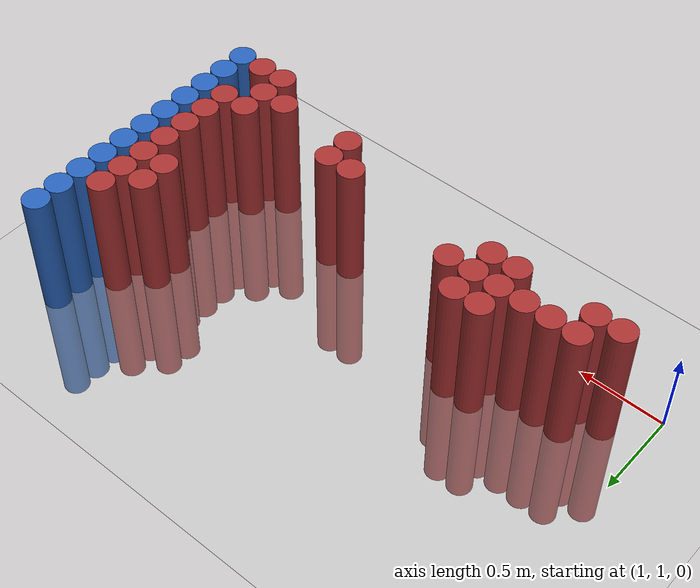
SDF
<sdf version="1.6">
 <world name="default">
  <model name="ground_plane">
   <static>1</static>
   <link name="link">
    <collision name="collision">
     <geometry><plane><normal>0 0 1</normal><size>100 100</size></plane></geometry>
     <surface><friction><ode><mu>100</mu><mu2>50</mu2></ode></friction></surface>
    </collision>
    <visual name="visual">
     <cast_shadows>0</cast_shadows>
     <geometry><plane><normal>0 0 1</normal><size>100 100</size></plane></geometry>
     <material>
      <script><uri>file://media/materials/scripts/gazebo.material</uri><name>Gazebo/Grey</name></script>
     </material>
    </visual>
   </link>
  </model>
  <model name="unit_cylinder_128">
   <static>1</static>
   <pose>3.925000 1.075000 0.000000 0.000000 0.000000 0.000000</pose>
   <link name="link">
    <inertial>
     <mass>1</mass>
     <inertia><ixx>0.145833</ixx><ixy>0</ixy><ixz>0</ixz><iyy>0.145833</iyy><iyz>0</iyz><izz>0.125</izz></inertia>
    </inertial>
    <collision name="collision">
     <geometry><cylinder><radius>0.075000</radius><length>1.5</length></cylinder></geometry>
    </collision>
    <visual name="visual">
     <geometry><cylinder><radius>0.075000</radius><length>1.5</length></cylinder></geometry>
     <material>
      <ambient>0.152000 0.379000 0.720000 1</ambient>
      <diffuse>0.152000 0.379000 0.720000 1</diffuse>
     </material>
     <material>
      <script><name>Gazebo/Grey</name><uri>file://media/materials/scripts/gazebo.material</uri></script>
     </material>
    </visual>
   </link>
  </model>
  <model name="unit_cylinder_130">
   <static>1</static>
   <pose>3.925000 1.225000 0.000000 0.000000 0.000000 0.000000</pose>
   <link name="link">
    <inertial>
     <mass>1</mass>
     <inertia><ixx>0.145833</ixx><ixy>0</ixy><ixz>0</ixz><iyy>0.145833</iyy><iyz>0</iyz><izz>0.125</izz></inertia>
    </inertial>
    <collision name="collision">
     <geometry><cylinder><radius>0.075000</radius><length>1.5</length></cylinder></geometry>
    </collision>
    <visual name="visual">
     <geometry><cylinder><radius>0.075000</radius><length>1.5</length></cylinder></geometry>
     <material>
      <ambient>0.152000 0.379000 0.720000 1</ambient>
      <diffuse>0.152000 0.379000 0.720000 1</diffuse>
     </material>
     <material>
      <script><name>Gazebo/Grey</name><uri>file://media/materials/scripts/gazebo.material</uri></script>
     </material>
    </visual>
   </link>
  </model>
  <model name="unit_cylinder_132">
   <static>1</static>
   <pose>3.925000 1.375000 0.000000 0.000000 0.000000 0.000000</pose>
   <link name="link">
    <inertial>
     <mass>1</mass>
     <inertia><ixx>0.145833</ixx><ixy>0</ixy><ixz>0</ixz><iyy>0.145833</iyy><iyz>0</iyz><izz>0.125</izz></inertia>
    </inertial>
    <collision name="collision">
     <geometry><cylinder><radius>0.075000</radius><length>1.5</length></cylinder></geometry>
    </collision>
    <visual name="visual">
     <geometry><cylinder><radius>0.075000</radius><length>1.5</length></cylinder></geometry>
     <material>
      <ambient>0.152000 0.379000 0.720000 1</ambient>
      <diffuse>0.152000 0.379000 0.720000 1</diffuse>
     </material>
     <material>
      <script><name>Gazebo/Grey</name><uri>file://media/materials/scripts/gazebo.material</uri></script>
     </material>
    </visual>
   </link>
  </model>
  <model name="unit_cylinder_134">
   <static>1</static>
   <pose>3.925000 1.525000 0.000000 0.000000 0.000000 0.000000</pose>
   <link name="link">
    <inertial>
     <mass>1</mass>
     <inertia><ixx>0.145833</ixx><ixy>0</ixy><ixz>0</ixz><iyy>0.145833</iyy><iyz>0</iyz><izz>0.125</izz></inertia>
    </inertial>
    <collision name="collision">
     <geometry><cylinder><radius>0.075000</radius><length>1.5</length></cylinder></geometry>
    </collision>
    <visual name="visual">
     <geometry><cylinder><radius>0.075000</radius><length>1.5</length></cylinder></geometry>
     <material>
      <ambient>0.152000 0.379000 0.720000 1</ambient>
      <diffuse>0.152000 0.379000 0.720000 1</diffuse>
     </material>
     <material>
      <script><name>Gazebo/Grey</name><uri>file://media/materials/scripts/gazebo.material</uri></script>
     </material>
    </visual>
   </link>
  </model>
  <model name="unit_cylinder_136">
   <static>1</static>
   <pose>3.925000 1.675000 0.000000 0.000000 0.000000 0.000000</pose>
   <link name="link">
    <inertial>
     <mass>1</mass>
     <inertia><ixx>0.145833</ixx><ixy>0</ixy><ixz>0</ixz><iyy>0.145833</iyy><iyz>0</iyz><izz>0.125</izz></inertia>
    </inertial>
    <collision name="collision">
     <geometry><cylinder><radius>0.075000</radius><length>1.5</length></cylinder></geometry>
    </collision>
    <visual name="visual">
     <geometry><cylinder><radius>0.075000</radius><length>1.5</length></cylinder></geometry>
     <material>
      <ambient>0.152000 0.379000 0.720000 1</ambient>
      <diffuse>0.152000 0.379000 0.720000 1</diffuse>
     </material>
     <material>
      <script><name>Gazebo/Grey</name><uri>file://media/materials/scripts/gazebo.material</uri></script>
     </material>
    </visual>
   </link>
  </model>
  <model name="unit_cylinder_138">
   <static>1</static>
   <pose>3.925000 1.825000 0.000000 0.000000 0.000000 0.000000</pose>
   <link name="link">
    <inertial>
     <mass>1</mass>
     <inertia><ixx>0.145833</ixx><ixy>0</ixy><ixz>0</ixz><iyy>0.145833</iyy><iyz>0</iyz><izz>0.125</izz></inertia>
    </inertial>
    <collision name="collision">
     <geometry><cylinder><radius>0.075000</radius><length>1.5</length></cylinder></geometry>
    </collision>
    <visual name="visual">
     <geometry><cylinder><radius>0.075000</radius><length>1.5</length></cylinder></geometry>
     <material>
      <ambient>0.152000 0.379000 0.720000 1</ambient>
      <diffuse>0.152000 0.379000 0.720000 1</diffuse>
     </material>
     <material>
      <script><name>Gazebo/Grey</name><uri>file://media/materials/scripts/gazebo.material</uri></script>
     </material>
    </visual>
   </link>
  </model>
  <model name="unit_cylinder_140">
   <static>1</static>
   <pose>3.925000 1.975000 0.000000 0.000000 0.000000 0.000000</pose>
   <link name="link">
    <inertial>
     <mass>1</mass>
     <inertia><ixx>0.145833</ixx><ixy>0</ixy><ixz>0</ixz><iyy>0.145833</iyy><iyz>0</iyz><izz>0.125</izz></inertia>
    </inertial>
    <collision name="collision">
     <geometry><cylinder><radius>0.075000</radius><length>1.5</length></cylinder></geometry>
    </collision>
    <visual name="visual">
     <geometry><cylinder><radius>0.075000</radius><length>1.5</length></cylinder></geometry>
     <material>
      <ambient>0.152000 0.379000 0.720000 1</ambient>
      <diffuse>0.152000 0.379000 0.720000 1</diffuse>
     </material>
     <material>
      <script><name>Gazebo/Grey</name><uri>file://media/materials/scripts/gazebo.material</uri></script>
     </material>
    </visual>
   </link>
  </model>
  <model name="unit_cylinder_142">
   <static>1</static>
   <pose>3.925000 2.125000 0.000000 0.000000 0.000000 0.000000</pose>
   <link name="link">
    <inertial>
     <mass>1</mass>
     <inertia><ixx>0.145833</ixx><ixy>0</ixy><ixz>0</ixz><iyy>0.145833</iyy><iyz>0</iyz><izz>0.125</izz></inertia>
    </inertial>
    <collision name="collision">
     <geometry><cylinder><radius>0.075000</radius><length>1.5</length></cylinder></geometry>
    </collision>
    <visual name="visual">
     <geometry><cylinder><radius>0.075000</radius><length>1.5</length></cylinder></geometry>
     <material>
      <ambient>0.152000 0.379000 0.720000 1</ambient>
      <diffuse>0.152000 0.379000 0.720000 1</diffuse>
     </material>
     <material>
      <script><name>Gazebo/Grey</name><uri>file://media/materials/scripts/gazebo.material</uri></script>
     </material>
    </visual>
   </link>
  </model>
  <model name="unit_cylinder_144">
   <static>1</static>
   <pose>3.925000 2.275000 0.000000 0.000000 0.000000 0.000000</pose>
   <link name="link">
    <inertial>
     <mass>1</mass>
     <inertia><ixx>0.145833</ixx><ixy>0</ixy><ixz>0</ixz><iyy>0.145833</iyy><iyz>0</iyz><izz>0.125</izz></inertia>
    </inertial>
    <collision name="collision">
     <geometry><cylinder><radius>0.075000</radius><length>1.5</length></cylinder></geometry>
    </collision>
    <visual name="visual">
     <geometry><cylinder><radius>0.075000</radius><length>1.5</length></cylinder></geometry>
     <material>
      <ambient>0.152000 0.379000 0.720000 1</ambient>
      <diffuse>0.152000 0.379000 0.720000 1</diffuse>
     </material>
     <material>
      <script><name>Gazebo/Grey</name><uri>file://media/materials/scripts/gazebo.material</uri></script>
     </material>
    </visual>
   </link>
  </model>
  <model name="unit_cylinder_146">
   <static>1</static>
   <pose>3.925000 2.425000 0.000000 0.000000 0.000000 0.000000</pose>
   <link name="link">
    <inertial>
     <mass>1</mass>
     <inertia><ixx>0.145833</ixx><ixy>0</ixy><ixz>0</ixz><iyy>0.145833</iyy><iyz>0</iyz><izz>0.125</izz></inertia>
    </inertial>
    <collision name="collision">
     <geometry><cylinder><radius>0.075000</radius><length>1.5</length></cylinder></geometry>
    </collision>
    <visual name="visual">
     <geometry><cylinder><radius>0.075000</radius><length>1.5</length></cylinder></geometry>
     <material>
      <ambient>0.152000 0.379000 0.720000 1</ambient>
      <diffuse>0.152000 0.379000 0.720000 1</diffuse>
     </material>
     <material>
      <script><name>Gazebo/Grey</name><uri>file://media/materials/scripts/gazebo.material</uri></script>
     </material>
    </visual>
   </link>
  </model>
  <model name="unit_cylinder_398">
   <static>1</static>
   <pose>1.225000 1.225000 0.000000 0.000000 0.000000 0.000000</pose>
   <link name="link">
    <inertial>
     <mass>1</mass>
     <inertia><ixx>0.145833</ixx><ixy>0</ixy><ixz>0</ixz><iyy>0.145833</iyy><iyz>0</iyz><izz>0.125</izz></inertia>
    </inertial>
    <collision name="collision">
     <geometry><cylinder><radius>0.075000</radius><length>1.5</length></cylinder></geometry>
    </collision>
    <visual name="visual">
     <geometry><cylinder><radius>0.075000</radius><length>1.5</length></cylinder></geometry>
     <material>
      <ambient>0.648000 0.192000 0.192000 1</ambient>
      <diffuse>0.648000 0.192000 0.192000 1</diffuse>
     </material>
     <material>
      <script><name>Gazebo/Grey</name><uri>file://media/materials/scripts/gazebo.material</uri></script>
     </material>
    </visual>
   </link>
  </model>
  <model name="unit_cylinder_401">
   <static>1</static>
   <pose>1.375000 1.225000 0.000000 0.000000 0.000000 0.000000</pose>
   <link name="link">
    <inertial>
     <mass>1</mass>
     <inertia><ixx>0.145833</ixx><ixy>0</ixy><ixz>0</ixz><iyy>0.145833</iyy><iyz>0</iyz><izz>0.125</izz></inertia>
    </inertial>
    <collision name="collision">
     <geometry><cylinder><radius>0.075000</radius><length>1.5</length></cylinder></geometry>
    </collision>
    <visual name="visual">
     <geometry><cylinder><radius>0.075000</radius><length>1.5</length></cylinder></geometry>
     <material>
      <ambient>0.648000 0.192000 0.192000 1</ambient>
      <diffuse>0.648000 0.192000 0.192000 1</diffuse>
     </material>
     <material>
      <script><name>Gazebo/Grey</name><uri>file://media/materials/scripts/gazebo.material</uri></script>
     </material>
    </visual>
   </link>
  </model>
  <model name="unit_cylinder_402">
   <static>1</static>
   <pose>1.375000 1.375000 0.000000 0.000000 0.000000 0.000000</pose>
   <link name="link">
    <inertial>
     <mass>1</mass>
     <inertia><ixx>0.145833</ixx><ixy>0</ixy><ixz>0</ixz><iyy>0.145833</iyy><iyz>0</iyz><izz>0.125</izz></inertia>
    </inertial>
    <collision name="collision">
     <geometry><cylinder><radius>0.075000</radius><length>1.5</length></cylinder></geometry>
    </collision>
    <visual name="visual">
     <geometry><cylinder><radius>0.075000</radius><length>1.5</length></cylinder></geometry>
     <material>
      <ambient>0.648000 0.192000 0.192000 1</ambient>
      <diffuse>0.648000 0.192000 0.192000 1</diffuse>
     </material>
     <material>
      <script><name>Gazebo/Grey</name><uri>file://media/materials/scripts/gazebo.material</uri></script>
     </material>
    </visual>
   </link>
  </model>
  <model name="unit_cylinder_407">
   <static>1</static>
   <pose>1.525000 1.375000 0.000000 0.000000 0.000000 0.000000</pose>
   <link name="link">
    <inertial>
     <mass>1</mass>
     <inertia><ixx>0.145833</ixx><ixy>0</ixy><ixz>0</ixz><iyy>0.145833</iyy><iyz>0</iyz><izz>0.125</izz></inertia>
    </inertial>
    <collision name="collision">
     <geometry><cylinder><radius>0.075000</radius><length>1.5</length></cylinder></geometry>
    </collision>
    <visual name="visual">
     <geometry><cylinder><radius>0.075000</radius><length>1.5</length></cylinder></geometry>
     <material>
      <ambient>0.648000 0.192000 0.192000 1</ambient>
      <diffuse>0.648000 0.192000 0.192000 1</diffuse>
     </material>
     <material>
      <script><name>Gazebo/Grey</name><uri>file://media/materials/scripts/gazebo.material</uri></script>
     </material>
    </visual>
   </link>
  </model>
  <model name="unit_cylinder_410">
   <static>1</static>
   <pose>1.675000 1.375000 0.000000 0.000000 0.000000 0.000000</pose>
   <link name="link">
    <inertial>
     <mass>1</mass>
     <inertia><ixx>0.145833</ixx><ixy>0</ixy><ixz>0</ixz><iyy>0.145833</iyy><iyz>0</iyz><izz>0.125</izz></inertia>
    </inertial>
    <collision name="collision">
     <geometry><cylinder><radius>0.075000</radius><length>1.5</length></cylinder></geometry>
    </collision>
    <visual name="visual">
     <geometry><cylinder><radius>0.075000</radius><length>1.5</length></cylinder></geometry>
     <material>
      <ambient>0.648000 0.192000 0.192000 1</ambient>
      <diffuse>0.648000 0.192000 0.192000 1</diffuse>
     </material>
     <material>
      <script><name>Gazebo/Grey</name><uri>file://media/materials/scripts/gazebo.material</uri></script>
     </material>
    </visual>
   </link>
  </model>
  <model name="unit_cylinder_413">
   <static>1</static>
   <pose>1.825000 1.225000 0.000000 0.000000 0.000000 0.000000</pose>
   <link name="link">
    <inertial>
     <mass>1</mass>
     <inertia><ixx>0.145833</ixx><ixy>0</ixy><ixz>0</ixz><iyy>0.145833</iyy><iyz>0</iyz><izz>0.125</izz></inertia>
    </inertial>
    <collision name="collision">
     <geometry><cylinder><radius>0.075000</radius><length>1.5</length></cylinder></geometry>
    </collision>
    <visual name="visual">
     <geometry><cylinder><radius>0.075000</radius><length>1.5</length></cylinder></geometry>
     <material>
      <ambient>0.648000 0.192000 0.192000 1</ambient>
      <diffuse>0.648000 0.192000 0.192000 1</diffuse>
     </material>
     <material>
      <script><name>Gazebo/Grey</name><uri>file://media/materials/scripts/gazebo.material</uri></script>
     </material>
    </visual>
   </link>
  </model>
  <model name="unit_cylinder_414">
   <static>1</static>
   <pose>1.825000 1.375000 0.000000 0.000000 0.000000 0.000000</pose>
   <link name="link">
    <inertial>
     <mass>1</mass>
     <inertia><ixx>0.145833</ixx><ixy>0</ixy><ixz>0</ixz><iyy>0.145833</iyy><iyz>0</iyz><izz>0.125</izz></inertia>
    </inertial>
    <collision name="collision">
     <geometry><cylinder><radius>0.075000</radius><length>1.5</length></cylinder></geometry>
    </collision>
    <visual name="visual">
     <geometry><cylinder><radius>0.075000</radius><length>1.5</length></cylinder></geometry>
     <material>
      <ambient>0.648000 0.192000 0.192000 1</ambient>
      <diffuse>0.648000 0.192000 0.192000 1</diffuse>
     </material>
     <material>
      <script><name>Gazebo/Grey</name><uri>file://media/materials/scripts/gazebo.material</uri></script>
     </material>
    </visual>
   </link>
  </model>
  <model name="unit_cylinder_415">
   <static>1</static>
   <pose>1.825000 1.525000 0.000000 0.000000 0.000000 0.000000</pose>
   <link name="link">
    <inertial>
     <mass>1</mass>
     <inertia><ixx>0.145833</ixx><ixy>0</ixy><ixz>0</ixz><iyy>0.145833</iyy><iyz>0</iyz><izz>0.125</izz></inertia>
    </inertial>
    <collision name="collision">
     <geometry><cylinder><radius>0.075000</radius><length>1.5</length></cylinder></geometry>
    </collision>
    <visual name="visual">
     <geometry><cylinder><radius>0.075000</radius><length>1.5</length></cylinder></geometry>
     <material>
      <ambient>0.648000 0.192000 0.192000 1</ambient>
      <diffuse>0.648000 0.192000 0.192000 1</diffuse>
     </material>
     <material>
      <script><name>Gazebo/Grey</name><uri>file://media/materials/scripts/gazebo.material</uri></script>
     </material>
    </visual>
   </link>
  </model>
  <model name="unit_cylinder_418">
   <static>1</static>
   <pose>1.975000 1.225000 0.000000 0.000000 0.000000 0.000000</pose>
   <link name="link">
    <inertial>
     <mass>1</mass>
     <inertia><ixx>0.145833</ixx><ixy>0</ixy><ixz>0</ixz><iyy>0.145833</iyy><iyz>0</iyz><izz>0.125</izz></inertia>
    </inertial>
    <collision name="collision">
     <geometry><cylinder><radius>0.075000</radius><length>1.5</length></cylinder></geometry>
    </collision>
    <visual name="visual">
     <geometry><cylinder><radius>0.075000</radius><length>1.5</length></cylinder></geometry>
     <material>
      <ambient>0.648000 0.192000 0.192000 1</ambient>
      <diffuse>0.648000 0.192000 0.192000 1</diffuse>
     </material>
     <material>
      <script><name>Gazebo/Grey</name><uri>file://media/materials/scripts/gazebo.material</uri></script>
     </material>
    </visual>
   </link>
  </model>
  <model name="unit_cylinder_419">
   <static>1</static>
   <pose>1.975000 1.375000 0.000000 0.000000 0.000000 0.000000</pose>
   <link name="link">
    <inertial>
     <mass>1</mass>
     <inertia><ixx>0.145833</ixx><ixy>0</ixy><ixz>0</ixz><iyy>0.145833</iyy><iyz>0</iyz><izz>0.125</izz></inertia>
    </inertial>
    <collision name="collision">
     <geometry><cylinder><radius>0.075000</radius><length>1.5</length></cylinder></geometry>
    </collision>
    <visual name="visual">
     <geometry><cylinder><radius>0.075000</radius><length>1.5</length></cylinder></geometry>
     <material>
      <ambient>0.648000 0.192000 0.192000 1</ambient>
      <diffuse>0.648000 0.192000 0.192000 1</diffuse>
     </material>
     <material>
      <script><name>Gazebo/Grey</name><uri>file://media/materials/scripts/gazebo.material</uri></script>
     </material>
    </visual>
   </link>
  </model>
  <model name="unit_cylinder_420">
   <static>1</static>
   <pose>1.975000 1.525000 0.000000 0.000000 0.000000 0.000000</pose>
   <link name="link">
    <inertial>
     <mass>1</mass>
     <inertia><ixx>0.145833</ixx><ixy>0</ixy><ixz>0</ixz><iyy>0.145833</iyy><iyz>0</iyz><izz>0.125</izz></inertia>
    </inertial>
    <collision name="collision">
     <geometry><cylinder><radius>0.075000</radius><length>1.5</length></cylinder></geometry>
    </collision>
    <visual name="visual">
     <geometry><cylinder><radius>0.075000</radius><length>1.5</length></cylinder></geometry>
     <material>
      <ambient>0.648000 0.192000 0.192000 1</ambient>
      <diffuse>0.648000 0.192000 0.192000 1</diffuse>
     </material>
     <material>
      <script><name>Gazebo/Grey</name><uri>file://media/materials/scripts/gazebo.material</uri></script>
     </material>
    </visual>
   </link>
  </model>
  <model name="unit_cylinder_423">
   <static>1</static>
   <pose>2.125000 1.375000 0.000000 0.000000 0.000000 0.000000</pose>
   <link name="link">
    <inertial>
     <mass>1</mass>
     <inertia><ixx>0.145833</ixx><ixy>0</ixy><ixz>0</ixz><iyy>0.145833</iyy><iyz>0</iyz><izz>0.125</izz></inertia>
    </inertial>
    <collision name="collision">
     <geometry><cylinder><radius>0.075000</radius><length>1.5</length></cylinder></geometry>
    </collision>
    <visual name="visual">
     <geometry><cylinder><radius>0.075000</radius><length>1.5</length></cylinder></geometry>
     <material>
      <ambient>0.648000 0.192000 0.192000 1</ambient>
      <diffuse>0.648000 0.192000 0.192000 1</diffuse>
     </material>
     <material>
      <script><name>Gazebo/Grey</name><uri>file://media/materials/scripts/gazebo.material</uri></script>
     </material>
    </visual>
   </link>
  </model>
  <model name="unit_cylinder_435">
   <static>1</static>
   <pose>2.875000 1.225000 0.000000 0.000000 0.000000 0.000000</pose>
   <link name="link">
    <inertial>
     <mass>1</mass>
     <inertia><ixx>0.145833</ixx><ixy>0</ixy><ixz>0</ixz><iyy>0.145833</iyy><iyz>0</iyz><izz>0.125</izz></inertia>
    </inertial>
    <collision name="collision">
     <geometry><cylinder><radius>0.075000</radius><length>1.5</length></cylinder></geometry>
    </collision>
    <visual name="visual">
     <geometry><cylinder><radius>0.075000</radius><length>1.5</length></cylinder></geometry>
     <material>
      <ambient>0.648000 0.192000 0.192000 1</ambient>
      <diffuse>0.648000 0.192000 0.192000 1</diffuse>
     </material>
     <material>
      <script><name>Gazebo/Grey</name><uri>file://media/materials/scripts/gazebo.material</uri></script>
     </material>
    </visual>
   </link>
  </model>
  <model name="unit_cylinder_443">
   <static>1</static>
   <pose>3.025000 1.075000 0.000000 0.000000 0.000000 0.000000</pose>
   <link name="link">
    <inertial>
     <mass>1</mass>
     <inertia><ixx>0.145833</ixx><ixy>0</ixy><ixz>0</ixz><iyy>0.145833</iyy><iyz>0</iyz><izz>0.125</izz></inertia>
    </inertial>
    <collision name="collision">
     <geometry><cylinder><radius>0.075000</radius><length>1.5</length></cylinder></geometry>
    </collision>
    <visual name="visual">
     <geometry><cylinder><radius>0.075000</radius><length>1.5</length></cylinder></geometry>
     <material>
      <ambient>0.648000 0.192000 0.192000 1</ambient>
      <diffuse>0.648000 0.192000 0.192000 1</diffuse>
     </material>
     <material>
      <script><name>Gazebo/Grey</name><uri>file://media/materials/scripts/gazebo.material</uri></script>
     </material>
    </visual>
   </link>
  </model>
  <model name="unit_cylinder_444">
   <static>1</static>
   <pose>3.025000 1.225000 0.000000 0.000000 0.000000 0.000000</pose>
   <link name="link">
    <inertial>
     <mass>1</mass>
     <inertia><ixx>0.145833</ixx><ixy>0</ixy><ixz>0</ixz><iyy>0.145833</iyy><iyz>0</iyz><izz>0.125</izz></inertia>
    </inertial>
    <collision name="collision">
     <geometry><cylinder><radius>0.075000</radius><length>1.5</length></cylinder></geometry>
    </collision>
    <visual name="visual">
     <geometry><cylinder><radius>0.075000</radius><length>1.5</length></cylinder></geometry>
     <material>
      <ambient>0.648000 0.192000 0.192000 1</ambient>
      <diffuse>0.648000 0.192000 0.192000 1</diffuse>
     </material>
     <material>
      <script><name>Gazebo/Grey</name><uri>file://media/materials/scripts/gazebo.material</uri></script>
     </material>
    </visual>
   </link>
  </model>
  <model name="unit_cylinder_457">
   <static>1</static>
   <pose>3.475000 1.075000 0.000000 0.000000 0.000000 0.000000</pose>
   <link name="link">
    <inertial>
     <mass>1</mass>
     <inertia><ixx>0.145833</ixx><ixy>0</ixy><ixz>0</ixz><iyy>0.145833</iyy><iyz>0</iyz><izz>0.125</izz></inertia>
    </inertial>
    <collision name="collision">
     <geometry><cylinder><radius>0.075000</radius><length>1.5</length></cylinder></geometry>
    </collision>
    <visual name="visual">
     <geometry><cylinder><radius>0.075000</radius><length>1.5</length></cylinder></geometry>
     <material>
      <ambient>0.648000 0.192000 0.192000 1</ambient>
      <diffuse>0.648000 0.192000 0.192000 1</diffuse>
     </material>
     <material>
      <script><name>Gazebo/Grey</name><uri>file://media/materials/scripts/gazebo.material</uri></script>
     </material>
    </visual>
   </link>
  </model>
  <model name="unit_cylinder_458">
   <static>1</static>
   <pose>3.625000 0.925000 0.000000 0.000000 0.000000 0.000000</pose>
   <link name="link">
    <inertial>
     <mass>1</mass>
     <inertia><ixx>0.145833</ixx><ixy>0</ixy><ixz>0</ixz><iyy>0.145833</iyy><iyz>0</iyz><izz>0.125</izz></inertia>
    </inertial>
    <collision name="collision">
     <geometry><cylinder><radius>0.075000</radius><length>1.5</length></cylinder></geometry>
    </collision>
    <visual name="visual">
     <geometry><cylinder><radius>0.075000</radius><length>1.5</length></cylinder></geometry>
     <material>
      <ambient>0.648000 0.192000 0.192000 1</ambient>
      <diffuse>0.648000 0.192000 0.192000 1</diffuse>
     </material>
     <material>
      <script><name>Gazebo/Grey</name><uri>file://media/materials/scripts/gazebo.material</uri></script>
     </material>
    </visual>
   </link>
  </model>
  <model name="unit_cylinder_459">
   <static>1</static>
   <pose>3.625000 1.075000 0.000000 0.000000 0.000000 0.000000</pose>
   <link name="link">
    <inertial>
     <mass>1</mass>
     <inertia><ixx>0.145833</ixx><ixy>0</ixy><ixz>0</ixz><iyy>0.145833</iyy><iyz>0</iyz><izz>0.125</izz></inertia>
    </inertial>
    <collision name="collision">
     <geometry><cylinder><radius>0.075000</radius><length>1.5</length></cylinder></geometry>
    </collision>
    <visual name="visual">
     <geometry><cylinder><radius>0.075000</radius><length>1.5</length></cylinder></geometry>
     <material>
      <ambient>0.648000 0.192000 0.192000 1</ambient>
      <diffuse>0.648000 0.192000 0.192000 1</diffuse>
     </material>
     <material>
      <script><name>Gazebo/Grey</name><uri>file://media/materials/scripts/gazebo.material</uri></script>
     </material>
    </visual>
   </link>
  </model>
  <model name="unit_cylinder_460">
   <static>1</static>
   <pose>3.625000 1.225000 0.000000 0.000000 0.000000 0.000000</pose>
   <link name="link">
    <inertial>
     <mass>1</mass>
     <inertia><ixx>0.145833</ixx><ixy>0</ixy><ixz>0</ixz><iyy>0.145833</iyy><iyz>0</iyz><izz>0.125</izz></inertia>
    </inertial>
    <collision name="collision">
     <geometry><cylinder><radius>0.075000</radius><length>1.5</length></cylinder></geometry>
    </collision>
    <visual name="visual">
     <geometry><cylinder><radius>0.075000</radius><length>1.5</length></cylinder></geometry>
     <material>
      <ambient>0.648000 0.192000 0.192000 1</ambient>
      <diffuse>0.648000 0.192000 0.192000 1</diffuse>
     </material>
     <material>
      <script><name>Gazebo/Grey</name><uri>file://media/materials/scripts/gazebo.material</uri></script>
     </material>
    </visual>
   </link>
  </model>
  <model name="unit_cylinder_461">
   <static>1</static>
   <pose>3.625000 1.825000 0.000000 0.000000 0.000000 0.000000</pose>
   <link name="link">
    <inertial>
     <mass>1</mass>
     <inertia><ixx>0.145833</ixx><ixy>0</ixy><ixz>0</ixz><iyy>0.145833</iyy><iyz>0</iyz><izz>0.125</izz></inertia>
    </inertial>
    <collision name="collision">
     <geometry><cylinder><radius>0.075000</radius><length>1.5</length></cylinder></geometry>
    </collision>
    <visual name="visual">
     <geometry><cylinder><radius>0.075000</radius><length>1.5</length></cylinder></geometry>
     <material>
      <ambient>0.648000 0.192000 0.192000 1</ambient>
      <diffuse>0.648000 0.192000 0.192000 1</diffuse>
     </material>
     <material>
      <script><name>Gazebo/Grey</name><uri>file://media/materials/scripts/gazebo.material</uri></script>
     </material>
    </visual>
   </link>
  </model>
  <model name="unit_cylinder_462">
   <static>1</static>
   <pose>3.625000 1.975000 0.000000 0.000000 0.000000 0.000000</pose>
   <link name="link">
    <inertial>
     <mass>1</mass>
     <inertia><ixx>0.145833</ixx><ixy>0</ixy><ixz>0</ixz><iyy>0.145833</iyy><iyz>0</iyz><izz>0.125</izz></inertia>
    </inertial>
    <collision name="collision">
     <geometry><cylinder><radius>0.075000</radius><length>1.5</length></cylinder></geometry>
    </collision>
    <visual name="visual">
     <geometry><cylinder><radius>0.075000</radius><length>1.5</length></cylinder></geometry>
     <material>
      <ambient>0.648000 0.192000 0.192000 1</ambient>
      <diffuse>0.648000 0.192000 0.192000 1</diffuse>
     </material>
     <material>
      <script><name>Gazebo/Grey</name><uri>file://media/materials/scripts/gazebo.material</uri></script>
     </material>
    </visual>
   </link>
  </model>
  <model name="unit_cylinder_477">
   <static>1</static>
   <pose>3.775000 0.925000 0.000000 0.000000 0.000000 0.000000</pose>
   <link name="link">
    <inertial>
     <mass>1</mass>
     <inertia><ixx>0.145833</ixx><ixy>0</ixy><ixz>0</ixz><iyy>0.145833</iyy><iyz>0</iyz><izz>0.125</izz></inertia>
    </inertial>
    <collision name="collision">
     <geometry><cylinder><radius>0.075000</radius><length>1.5</length></cylinder></geometry>
    </collision>
    <visual name="visual">
     <geometry><cylinder><radius>0.075000</radius><length>1.5</length></cylinder></geometry>
     <material>
      <ambient>0.648000 0.192000 0.192000 1</ambient>
      <diffuse>0.648000 0.192000 0.192000 1</diffuse>
     </material>
     <material>
      <script><name>Gazebo/Grey</name><uri>file://media/materials/scripts/gazebo.material</uri></script>
     </material>
    </visual>
   </link>
  </model>
  <model name="unit_cylinder_478">
   <static>1</static>
   <pose>3.775000 1.225000 0.000000 0.000000 0.000000 0.000000</pose>
   <link name="link">
    <inertial>
     <mass>1</mass>
     <inertia><ixx>0.145833</ixx><ixy>0</ixy><ixz>0</ixz><iyy>0.145833</iyy><iyz>0</iyz><izz>0.125</izz></inertia>
    </inertial>
    <collision name="collision">
     <geometry><cylinder><radius>0.075000</radius><length>1.5</length></cylinder></geometry>
    </collision>
    <visual name="visual">
     <geometry><cylinder><radius>0.075000</radius><length>1.5</length></cylinder></geometry>
     <material>
      <ambient>0.648000 0.192000 0.192000 1</ambient>
      <diffuse>0.648000 0.192000 0.192000 1</diffuse>
     </material>
     <material>
      <script><name>Gazebo/Grey</name><uri>file://media/materials/scripts/gazebo.material</uri></script>
     </material>
    </visual>
   </link>
  </model>
  <model name="unit_cylinder_479">
   <static>1</static>
   <pose>3.775000 1.375000 0.000000 0.000000 0.000000 0.000000</pose>
   <link name="link">
    <inertial>
     <mass>1</mass>
     <inertia><ixx>0.145833</ixx><ixy>0</ixy><ixz>0</ixz><iyy>0.145833</iyy><iyz>0</iyz><izz>0.125</izz></inertia>
    </inertial>
    <collision name="collision">
     <geometry><cylinder><radius>0.075000</radius><length>1.5</length></cylinder></geometry>
    </collision>
    <visual name="visual">
     <geometry><cylinder><radius>0.075000</radius><length>1.5</length></cylinder></geometry>
     <material>
      <ambient>0.648000 0.192000 0.192000 1</ambient>
      <diffuse>0.648000 0.192000 0.192000 1</diffuse>
     </material>
     <material>
      <script><name>Gazebo/Grey</name><uri>file://media/materials/scripts/gazebo.material</uri></script>
     </material>
    </visual>
   </link>
  </model>
  <model name="unit_cylinder_480">
   <static>1</static>
   <pose>3.775000 1.525000 0.000000 0.000000 0.000000 0.000000</pose>
   <link name="link">
    <inertial>
     <mass>1</mass>
     <inertia><ixx>0.145833</ixx><ixy>0</ixy><ixz>0</ixz><iyy>0.145833</iyy><iyz>0</iyz><izz>0.125</izz></inertia>
    </inertial>
    <collision name="collision">
     <geometry><cylinder><radius>0.075000</radius><length>1.5</length></cylinder></geometry>
    </collision>
    <visual name="visual">
     <geometry><cylinder><radius>0.075000</radius><length>1.5</length></cylinder></geometry>
     <material>
      <ambient>0.648000 0.192000 0.192000 1</ambient>
      <diffuse>0.648000 0.192000 0.192000 1</diffuse>
     </material>
     <material>
      <script><name>Gazebo/Grey</name><uri>file://media/materials/scripts/gazebo.material</uri></script>
     </material>
    </visual>
   </link>
  </model>
  <model name="unit_cylinder_481">
   <static>1</static>
   <pose>3.775000 1.675000 0.000000 0.000000 0.000000 0.000000</pose>
   <link name="link">
    <inertial>
     <mass>1</mass>
     <inertia><ixx>0.145833</ixx><ixy>0</ixy><ixz>0</ixz><iyy>0.145833</iyy><iyz>0</iyz><izz>0.125</izz></inertia>
    </inertial>
    <collision name="collision">
     <geometry><cylinder><radius>0.075000</radius><length>1.5</length></cylinder></geometry>
    </collision>
    <visual name="visual">
     <geometry><cylinder><radius>0.075000</radius><length>1.5</length></cylinder></geometry>
     <material>
      <ambient>0.648000 0.192000 0.192000 1</ambient>
      <diffuse>0.648000 0.192000 0.192000 1</diffuse>
     </material>
     <material>
      <script><name>Gazebo/Grey</name><uri>file://media/materials/scripts/gazebo.material</uri></script>
     </material>
    </visual>
   </link>
  </model>
  <model name="unit_cylinder_482">
   <static>1</static>
   <pose>3.775000 1.825000 0.000000 0.000000 0.000000 0.000000</pose>
   <link name="link">
    <inertial>
     <mass>1</mass>
     <inertia><ixx>0.145833</ixx><ixy>0</ixy><ixz>0</ixz><iyy>0.145833</iyy><iyz>0</iyz><izz>0.125</izz></inertia>
    </inertial>
    <collision name="collision">
     <geometry><cylinder><radius>0.075000</radius><length>1.5</length></cylinder></geometry>
    </collision>
    <visual name="visual">
     <geometry><cylinder><radius>0.075000</radius><length>1.5</length></cylinder></geometry>
     <material>
      <ambient>0.648000 0.192000 0.192000 1</ambient>
      <diffuse>0.648000 0.192000 0.192000 1</diffuse>
     </material>
     <material>
      <script><name>Gazebo/Grey</name><uri>file://media/materials/scripts/gazebo.material</uri></script>
     </material>
    </visual>
   </link>
  </model>
  <model name="unit_cylinder_483">
   <static>1</static>
   <pose>3.775000 1.975000 0.000000 0.000000 0.000000 0.000000</pose>
   <link name="link">
    <inertial>
     <mass>1</mass>
     <inertia><ixx>0.145833</ixx><ixy>0</ixy><ixz>0</ixz><iyy>0.145833</iyy><iyz>0</iyz><izz>0.125</izz></inertia>
    </inertial>
    <collision name="collision">
     <geometry><cylinder><radius>0.075000</radius><length>1.5</length></cylinder></geometry>
    </collision>
    <visual name="visual">
     <geometry><cylinder><radius>0.075000</radius><length>1.5</length></cylinder></geometry>
     <material>
      <ambient>0.648000 0.192000 0.192000 1</ambient>
      <diffuse>0.648000 0.192000 0.192000 1</diffuse>
     </material>
     <material>
      <script><name>Gazebo/Grey</name><uri>file://media/materials/scripts/gazebo.material</uri></script>
     </material>
    </visual>
   </link>
  </model>
  <model name="unit_cylinder_484">
   <static>1</static>
   <pose>3.775000 2.125000 0.000000 0.000000 0.000000 0.000000</pose>
   <link name="link">
    <inertial>
     <mass>1</mass>
     <inertia><ixx>0.145833</ixx><ixy>0</ixy><ixz>0</ixz><iyy>0.145833</iyy><iyz>0</iyz><izz>0.125</izz></inertia>
    </inertial>
    <collision name="collision">
     <geometry><cylinder><radius>0.075000</radius><length>1.5</length></cylinder></geometry>
    </collision>
    <visual name="visual">
     <geometry><cylinder><radius>0.075000</radius><length>1.5</length></cylinder></geometry>
     <material>
      <ambient>0.648000 0.192000 0.192000 1</ambient>
      <diffuse>0.648000 0.192000 0.192000 1</diffuse>
     </material>
     <material>
      <script><name>Gazebo/Grey</name><uri>file://media/materials/scripts/gazebo.material</uri></script>
     </material>
    </visual>
   </link>
  </model>
  <model name="unit_cylinder_517">
   <static>1</static>
   <pose>3.925000 0.925000 0.000000 0.000000 0.000000 0.000000</pose>
   <link name="link">
    <inertial>
     <mass>1</mass>
     <inertia><ixx>0.145833</ixx><ixy>0</ixy><ixz>0</ixz><iyy>0.145833</iyy><iyz>0</iyz><izz>0.125</izz></inertia>
    </inertial>
    <collision name="collision">
     <geometry><cylinder><radius>0.075000</radius><length>1.5</length></cylinder></geometry>
    </collision>
    <visual name="visual">
     <geometry><cylinder><radius>0.075000</radius><length>1.5</length></cylinder></geometry>
     <material>
      <ambient>0.152000 0.379000 0.720000 1</ambient>
      <diffuse>0.152000 0.379000 0.720000 1</diffuse>
     </material>
     <material>
      <script><name>Gazebo/Grey</name><uri>file://media/materials/scripts/gazebo.material</uri></script>
     </material>
    </visual>
   </link>
  </model>
  <model name="unit_cylinder_518">
   <static>1</static>
   <pose>3.925000 1.075000 0.000000 0.000000 0.000000 0.000000</pose>
   <link name="link">
    <inertial>
     <mass>1</mass>
     <inertia><ixx>0.145833</ixx><ixy>0</ixy><ixz>0</ixz><iyy>0.145833</iyy><iyz>0</iyz><izz>0.125</izz></inertia>
    </inertial>
    <collision name="collision">
     <geometry><cylinder><radius>0.075000</radius><length>1.5</length></cylinder></geometry>
    </collision>
    <visual name="visual">
     <geometry><cylinder><radius>0.075000</radius><length>1.5</length></cylinder></geometry>
     <material>
      <ambient>0.152000 0.379000 0.720000 1</ambient>
      <diffuse>0.152000 0.379000 0.720000 1</diffuse>
     </material>
     <material>
      <script><name>Gazebo/Grey</name><uri>file://media/materials/scripts/gazebo.material</uri></script>
     </material>
    </visual>
   </link>
  </model>
  <model name="unit_cylinder_519">
   <static>1</static>
   <pose>3.925000 1.225000 0.000000 0.000000 0.000000 0.000000</pose>
   <link name="link">
    <inertial>
     <mass>1</mass>
     <inertia><ixx>0.145833</ixx><ixy>0</ixy><ixz>0</ixz><iyy>0.145833</iyy><iyz>0</iyz><izz>0.125</izz></inertia>
    </inertial>
    <collision name="collision">
     <geometry><cylinder><radius>0.075000</radius><length>1.5</length></cylinder></geometry>
    </collision>
    <visual name="visual">
     <geometry><cylinder><radius>0.075000</radius><length>1.5</length></cylinder></geometry>
     <material>
      <ambient>0.152000 0.379000 0.720000 1</ambient>
      <diffuse>0.152000 0.379000 0.720000 1</diffuse>
     </material>
     <material>
      <script><name>Gazebo/Grey</name><uri>file://media/materials/scripts/gazebo.material</uri></script>
     </material>
    </visual>
   </link>
  </model>
  <model name="unit_cylinder_520">
   <static>1</static>
   <pose>3.925000 1.375000 0.000000 0.000000 0.000000 0.000000</pose>
   <link name="link">
    <inertial>
     <mass>1</mass>
     <inertia><ixx>0.145833</ixx><ixy>0</ixy><ixz>0</ixz><iyy>0.145833</iyy><iyz>0</iyz><izz>0.125</izz></inertia>
    </inertial>
    <collision name="collision">
     <geometry><cylinder><radius>0.075000</radius><length>1.5</length></cylinder></geometry>
    </collision>
    <visual name="visual">
     <geometry><cylinder><radius>0.075000</radius><length>1.5</length></cylinder></geometry>
     <material>
      <ambient>0.152000 0.379000 0.720000 1</ambient>
      <diffuse>0.152000 0.379000 0.720000 1</diffuse>
     </material>
     <material>
      <script><name>Gazebo/Grey</name><uri>file://media/materials/scripts/gazebo.material</uri></script>
     </material>
    </visual>
   </link>
  </model>
  <model name="unit_cylinder_521">
   <static>1</static>
   <pose>3.925000 1.525000 0.000000 0.000000 0.000000 0.000000</pose>
   <link name="link">
    <inertial>
     <mass>1</mass>
     <inertia><ixx>0.145833</ixx><ixy>0</ixy><ixz>0</ixz><iyy>0.145833</iyy><iyz>0</iyz><izz>0.125</izz></inertia>
    </inertial>
    <collision name="collision">
     <geometry><cylinder><radius>0.075000</radius><length>1.5</length></cylinder></geometry>
    </collision>
    <visual name="visual">
     <geometry><cylinder><radius>0.075000</radius><length>1.5</length></cylinder></geometry>
     <material>
      <ambient>0.152000 0.379000 0.720000 1</ambient>
      <diffuse>0.152000 0.379000 0.720000 1</diffuse>
     </material>
     <material>
      <script><name>Gazebo/Grey</name><uri>file://media/materials/scripts/gazebo.material</uri></script>
     </material>
    </visual>
   </link>
  </model>
  <model name="unit_cylinder_522">
   <static>1</static>
   <pose>3.925000 1.675000 0.000000 0.000000 0.000000 0.000000</pose>
   <link name="link">
    <inertial>
     <mass>1</mass>
     <inertia><ixx>0.145833</ixx><ixy>0</ixy><ixz>0</ixz><iyy>0.145833</iyy><iyz>0</iyz><izz>0.125</izz></inertia>
    </inertial>
    <collision name="collision">
     <geometry><cylinder><radius>0.075000</radius><length>1.5</length></cylinder></geometry>
    </collision>
    <visual name="visual">
     <geometry><cylinder><radius>0.075000</radius><length>1.5</length></cylinder></geometry>
     <material>
      <ambient>0.152000 0.379000 0.720000 1</ambient>
      <diffuse>0.152000 0.379000 0.720000 1</diffuse>
     </material>
     <material>
      <script><name>Gazebo/Grey</name><uri>file://media/materials/scripts/gazebo.material</uri></script>
     </material>
    </visual>
   </link>
  </model>
  <model name="unit_cylinder_523">
   <static>1</static>
   <pose>3.925000 1.825000 0.000000 0.000000 0.000000 0.000000</pose>
   <link name="link">
    <inertial>
     <mass>1</mass>
     <inertia><ixx>0.145833</ixx><ixy>0</ixy><ixz>0</ixz><iyy>0.145833</iyy><iyz>0</iyz><izz>0.125</izz></inertia>
    </inertial>
    <collision name="collision">
     <geometry><cylinder><radius>0.075000</radius><length>1.5</length></cylinder></geometry>
    </collision>
    <visual name="visual">
     <geometry><cylinder><radius>0.075000</radius><length>1.5</length></cylinder></geometry>
     <material>
      <ambient>0.152000 0.379000 0.720000 1</ambient>
      <diffuse>0.152000 0.379000 0.720000 1</diffuse>
     </material>
     <material>
      <script><name>Gazebo/Grey</name><uri>file://media/materials/scripts/gazebo.material</uri></script>
     </material>
    </visual>
   </link>
  </model>
  <model name="unit_cylinder_524">
   <static>1</static>
   <pose>3.925000 1.975000 0.000000 0.000000 0.000000 0.000000</pose>
   <link name="link">
    <inertial>
     <mass>1</mass>
     <inertia><ixx>0.145833</ixx><ixy>0</ixy><ixz>0</ixz><iyy>0.145833</iyy><iyz>0</iyz><izz>0.125</izz></inertia>
    </inertial>
    <collision name="collision">
     <geometry><cylinder><radius>0.075000</radius><length>1.5</length></cylinder></geometry>
    </collision>
    <visual name="visual">
     <geometry><cylinder><radius>0.075000</radius><length>1.5</length></cylinder></geometry>
     <material>
      <ambient>0.152000 0.379000 0.720000 1</ambient>
      <diffuse>0.152000 0.379000 0.720000 1</diffuse>
     </material>
     <material>
      <script><name>Gazebo/Grey</name><uri>file://media/materials/scripts/gazebo.material</uri></script>
     </material>
    </visual>
   </link>
  </model>
  <model name="unit_cylinder_525">
   <static>1</static>
   <pose>3.925000 2.125000 0.000000 0.000000 0.000000 0.000000</pose>
   <link name="link">
    <inertial>
     <mass>1</mass>
     <inertia><ixx>0.145833</ixx><ixy>0</ixy><ixz>0</ixz><iyy>0.145833</iyy><iyz>0</iyz><izz>0.125</izz></inertia>
    </inertial>
    <collision name="collision">
     <geometry><cylinder><radius>0.075000</radius><length>1.5</length></cylinder></geometry>
    </collision>
    <visual name="visual">
     <geometry><cylinder><radius>0.075000</radius><length>1.5</length></cylinder></geometry>
     <material>
      <ambient>0.152000 0.379000 0.720000 1</ambient>
      <diffuse>0.152000 0.379000 0.720000 1</diffuse>
     </material>
     <material>
      <script><name>Gazebo/Grey</name><uri>file://media/materials/scripts/gazebo.material</uri></script>
     </material>
    </visual>
   </link>
  </model>
  <model name="unit_cylinder_526">
   <static>1</static>
   <pose>3.925000 2.275000 0.000000 0.000000 0.000000 0.000000</pose>
   <link name="link">
    <inertial>
     <mass>1</mass>
     <inertia><ixx>0.145833</ixx><ixy>0</ixy><ixz>0</ixz><iyy>0.145833</iyy><iyz>0</iyz><izz>0.125</izz></inertia>
    </inertial>
    <collision name="collision">
     <geometry><cylinder><radius>0.075000</radius><length>1.5</length></cylinder></geometry>
    </collision>
    <visual name="visual">
     <geometry><cylinder><radius>0.075000</radius><length>1.5</length></cylinder></geometry>
     <material>
      <ambient>0.152000 0.379000 0.720000 1</ambient>
      <diffuse>0.152000 0.379000 0.720000 1</diffuse>
     </material>
     <material>
      <script><name>Gazebo/Grey</name><uri>file://media/materials/scripts/gazebo.material</uri></script>
     </material>
    </visual>
   </link>
  </model>
  <model name="unit_cylinder_527">
   <static>1</static>
   <pose>3.925000 2.425000 0.000000 0.000000 0.000000 0.000000</pose>
   <link name="link">
    <inertial>
     <mass>1</mass>
     <inertia><ixx>0.145833</ixx><ixy>0</ixy><ixz>0</ixz><iyy>0.145833</iyy><iyz>0</iyz><izz>0.125</izz></inertia>
    </inertial>
    <collision name="collision">
     <geometry><cylinder><radius>0.075000</radius><length>1.5</length></cylinder></geometry>
    </collision>
    <visual name="visual">
     <geometry><cylinder><radius>0.075000</radius><length>1.5</length></cylinder></geometry>
     <material>
      <ambient>0.152000 0.379000 0.720000 1</ambient>
      <diffuse>0.152000 0.379000 0.720000 1</diffuse>
     </material>
     <material>
      <script><name>Gazebo/Grey</name><uri>file://media/materials/scripts/gazebo.material</uri></script>
     </material>
    </visual>
   </link>
  </model>
 </world>
</sdf>
